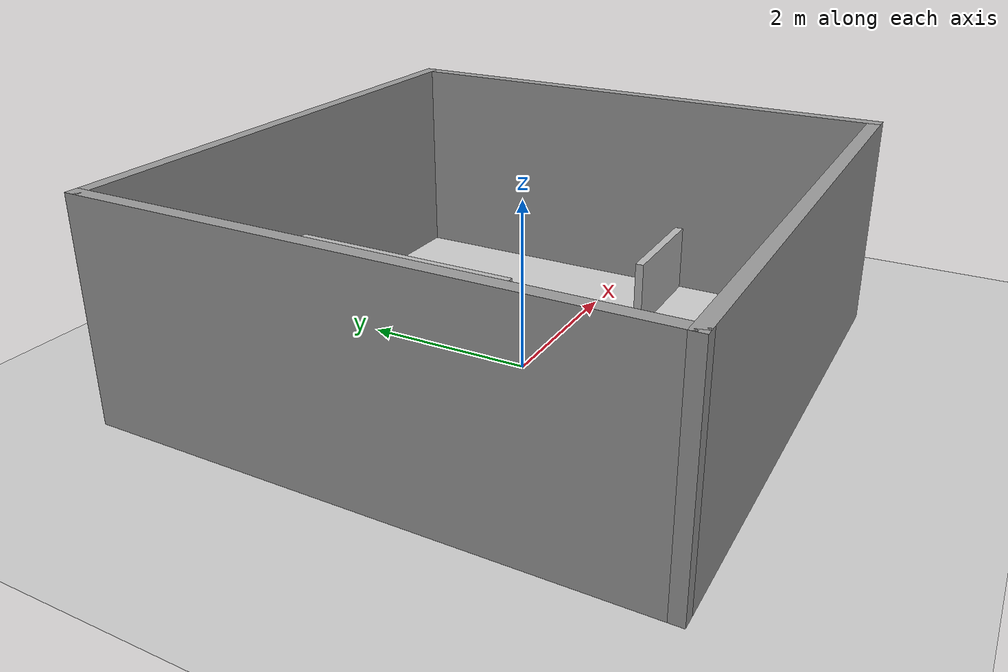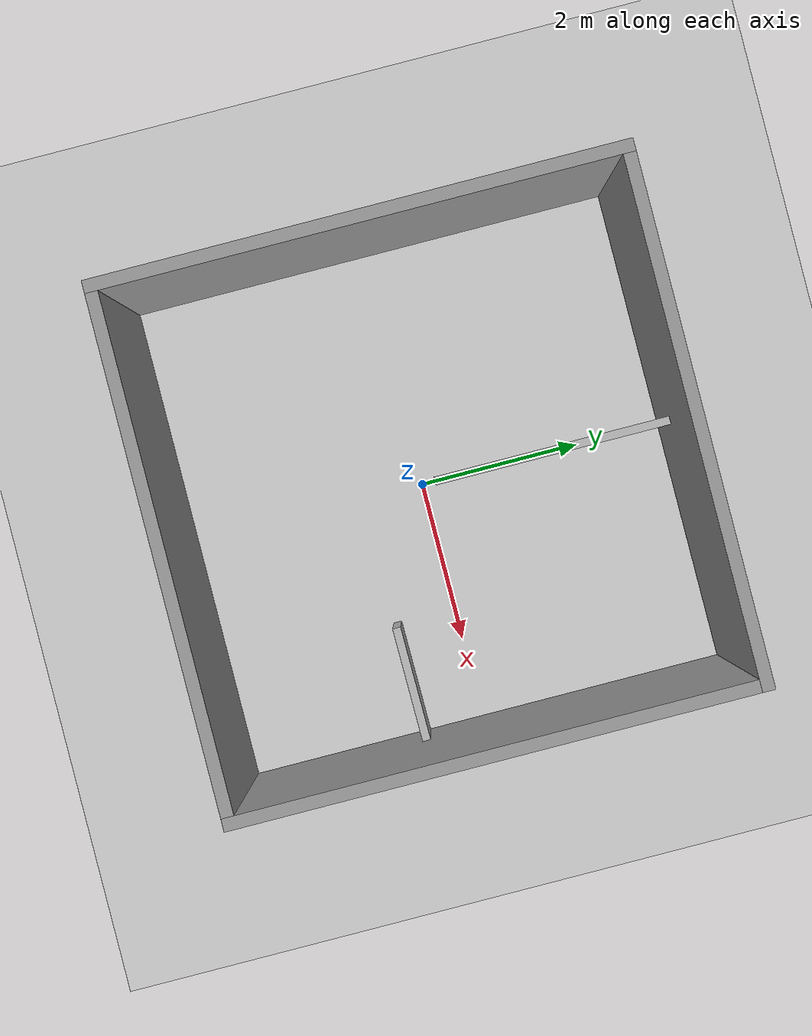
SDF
<sdf version="1.7">
 <world name="default">
  <light name="sun" type="directional">
   <pose>0 0 10 0 -0 0</pose>
   <diffuse>0.8 0.8 0.8 1</diffuse>
   <specular>0.2 0.2 0.2 1</specular>
   <attenuation>
    <range>1000</range>
    <constant>0.9</constant>
    <linear>0.01</linear>
    <quadratic>0.001</quadratic>
   </attenuation>
   <direction>-0.5 0.1 -0.9</direction>
   <spot><inner_angle>0</inner_angle><outer_angle>0</outer_angle><falloff>0</falloff></spot>
  </light>
  <model name="ground_plane">
   <static>1</static>
   <link name="link">
    <collision name="collision">
     <geometry><plane><normal>0 0 1</normal><size>100 100</size></plane></geometry>
     <surface>
      <contact><collide_bitmask>65535</collide_bitmask></contact>
      <friction><ode><mu>100</mu><mu2>50</mu2></ode></friction>
     </surface>
    </collision>
    <visual name="visual">
     <cast_shadows>0</cast_shadows>
     <geometry><plane><normal>0 0 1</normal><size>100 100</size></plane></geometry>
     <material>
      <script><uri>file://media/materials/scripts/gazebo.material</uri><name>Gazebo/Grey</name></script>
     </material>
    </visual>
   </link>
  </model>
  <gravity>0 0 -9.8</gravity>
  <magnetic_field>6e-06 2.3e-05 -4.2e-05</magnetic_field>
  <atmosphere type="adiabatic"/>
  <physics type="ode">
   <max_step_size>0.001</max_step_size>
   <real_time_factor>10</real_time_factor>
   <real_time_update_rate>10000</real_time_update_rate>
  </physics>
  <scene><ambient>0.4 0.4 0.4 1</ambient><background>0.7 0.7 0.7 1</background><shadows>1</shadows></scene>
  <spherical_coordinates>
   <surface_model>EARTH_WGS84</surface_model>
   <latitude_deg>0</latitude_deg>
   <longitude_deg>0</longitude_deg>
   <elevation>0</elevation>
   <heading_deg>0</heading_deg>
  </spherical_coordinates>
  <model name="mp5">
   <pose>0.021681 0.068778 0 0 -0 0</pose>
   <link name="Wall_0">
    <collision name="Wall_0_Collision">
     <geometry><box><size>6.25 0.15 2.5</size></box></geometry>
     <pose>0 0 1.25 0 -0 0</pose>
    </collision>
    <visual name="Wall_0_Visual">
     <pose>0 0 1.25 0 -0 0</pose>
     <geometry><box><size>6.25 0.15 2.5</size></box></geometry>
     <material>
      <script><uri>file://media/materials/scripts/gazebo.material</uri><name>Gazebo/Grey</name></script>
      <ambient>1 1 1 1</ambient>
     </material>
     <meta><layer>0</layer></meta>
    </visual>
    <pose>-3.05 -0 0 0 -0 1.5708</pose>
   </link>
   <link name="Wall_1">
    <collision name="Wall_1_Collision">
     <geometry><box><size>6.25 0.15 2.5</size></box></geometry>
     <pose>0 0 1.25 0 -0 0</pose>
    </collision>
    <visual name="Wall_1_Visual">
     <pose>0 0 1.25 0 -0 0</pose>
     <geometry><box><size>6.25 0.15 2.5</size></box></geometry>
     <material>
      <script><uri>file://media/materials/scripts/gazebo.material</uri><name>Gazebo/Grey</name></script>
      <ambient>1 1 1 1</ambient>
     </material>
     <meta><layer>0</layer></meta>
    </visual>
    <pose>0 3.05 0 0 -0 0</pose>
   </link>
   <link name="Wall_2">
    <collision name="Wall_2_Collision">
     <geometry><box><size>6.25 0.15 2.5</size></box></geometry>
     <pose>0 0 1.25 0 -0 0</pose>
    </collision>
    <visual name="Wall_2_Visual">
     <pose>0 0 1.25 0 -0 0</pose>
     <geometry><box><size>6.25 0.15 2.5</size></box></geometry>
     <material>
      <script><uri>file://media/materials/scripts/gazebo.material</uri><name>Gazebo/Grey</name></script>
      <ambient>1 1 1 1</ambient>
     </material>
     <meta><layer>0</layer></meta>
    </visual>
    <pose>3.05 -0 0 0 -0 -1.5708</pose>
   </link>
   <link name="Wall_3">
    <collision name="Wall_3_Collision">
     <geometry><box><size>6.25 0.15 2.5</size></box></geometry>
     <pose>0 0 1.25 0 -0 0</pose>
    </collision>
    <visual name="Wall_3_Visual">
     <pose>0 0 1.25 0 -0 0</pose>
     <geometry><box><size>6.25 0.15 2.5</size></box></geometry>
     <material>
      <script><uri>file://media/materials/scripts/gazebo.material</uri><name>Gazebo/Grey</name></script>
      <ambient>1 1 1 1</ambient>
     </material>
     <meta><layer>0</layer></meta>
    </visual>
    <pose>0 -3.05 0 0 -0 3.14159</pose>
   </link>
   <static>1</static>
  </model>
  <audio><device>default</device></audio>
  <model name="room_wall_2x5m">
   <link name="link">
    <visual name="visual">
     <geometry><box><size>0.1 2.88873 1.05204</size></box></geometry>
     <material>
      <script>
       <uri>https://fuel.ignitionrobotics.org/1.0/sebbyjp/models/room_wall_2x5m/1/files/material/script</uri>
       <uri>https://fuel.ignitionrobotics.org/1.0/sebbyjp/models/room_wall_2x5m/1/files/material/textures</uri>
       <name>Custom/room_wall_2x5m</name>
      </script>
     </material>
    </visual>
    <collision name="collision"><geometry><box><size>0.1 2.88873 1.05204</size></box></geometry></collision>
   </link>
   <static>1</static>
   <pose>-0.003349 1.60269 0.522926 0 -0 0</pose>
  </model>
  <model name="room_wall_2x5m_0">
   <link name="link">
    <visual name="visual">
     <geometry><box><size>0.1 1.41442 0.846266</size></box></geometry>
     <material>
      <script>
       <uri>https://fuel.ignitionrobotics.org/1.0/sebbyjp/models/room_wall_2x5m/1/files/material/script</uri>
       <uri>https://fuel.ignitionrobotics.org/1.0/sebbyjp/models/room_wall_2x5m/1/files/material/textures</uri>
       <name>Custom/room_wall_2x5m</name>
      </script>
     </material>
    </visual>
    <collision name="collision"><geometry><box><size>0.1 1.41442 0.846266</size></box></geometry></collision>
   </link>
   <static>1</static>
   <pose>2.30061 -0.731035 0.397744 0 -0 1.57961</pose>
  </model>
 </world>
</sdf>
